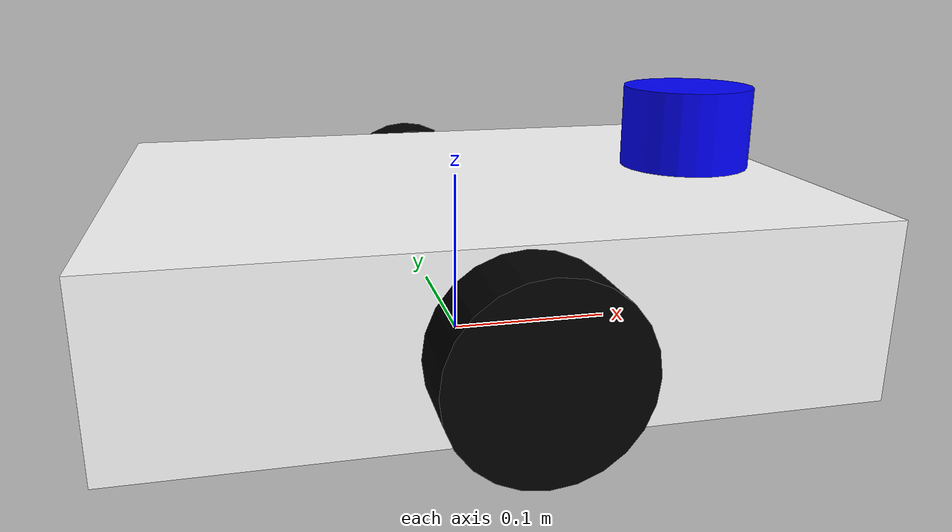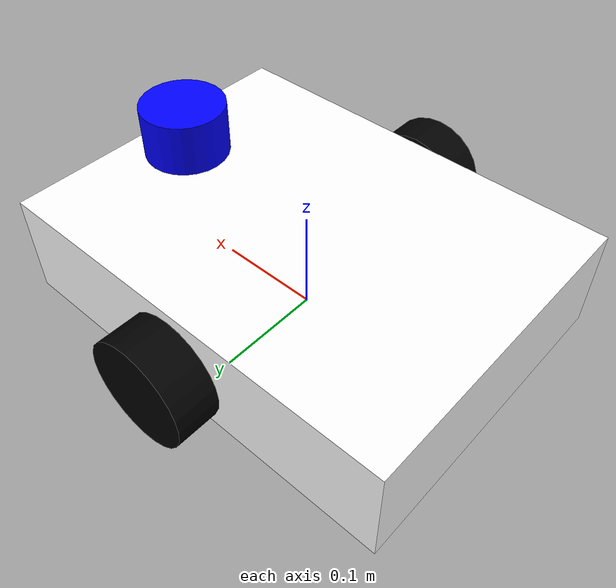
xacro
<?xml version="1.0"?>
<robot xmlns:xacro="http://www.ros.org/wiki/xacro" name="my_custom_bot">

    <material name="white"><color rgba="1 1 1 1"/></material>
    <material name="black"><color rgba="0 0 0 1"/></material>
    <material name="blue"><color rgba="0 0 1 1"/></material>
    <material name="red"><color rgba="1 0 0 1"/></material>

    <xacro:property name="wheel_radius" value="0.05"/>
    <xacro:property name="wheel_len" value="0.04"/>
    <xacro:property name="wheel_mass" value="0.5"/>
    <xacro:property name="chassis_mass" value="5.0"/>

    <link name="base_footprint"/>

    <joint name="base_joint" type="fixed">
        <parent link="base_footprint"/>
        <child link="base_link"/>
        <origin xyz="0 0 0.05"/>
    </joint>

    <link name="base_link">
        <visual>
            <origin xyz="0 0 0" rpy="0 0 0"/>
            <geometry><box size="0.4 0.3 0.1"/></geometry>
            <material name="white"/>
        </visual>
        <collision>
            <geometry><box size="0.4 0.3 0.1"/></geometry>
        </collision>
        <inertial>
            <mass value="${chassis_mass}"/>
            <inertia ixx="0.04" ixy="0" ixz="0" iyy="0.07" iyz="0" izz="0.1"/>
        </inertial>
    </link>

    <xacro:macro name="wheel" params="prefix y_offset rpy_roll axis_z">
        <joint name="${prefix}_wheel_joint" type="continuous">
            <parent link="base_link"/>
            <child link="${prefix}_wheel"/>
            <origin xyz="0 ${y_offset} 0" rpy="${rpy_roll} 0 0"/>
            <axis xyz="0 0 ${axis_z}"/>
        </joint>

        <link name="${prefix}_wheel">
            <visual>
                <geometry><cylinder radius="${wheel_radius}" length="${wheel_len}"/></geometry>
                <material name="black"/>
            </visual>
            <collision>
                <geometry><cylinder radius="${wheel_radius}" length="${wheel_len}"/></geometry>
            </collision>
            <inertial>
                <mass value="${wheel_mass}"/>
                <inertia ixx="0.0004" ixy="0" ixz="0" iyy="0.0004" iyz="0" izz="0.0006"/>
            </inertial>
        </link>
    </xacro:macro>

    <xacro:wheel prefix="left" y_offset="0.175" rpy_roll="-1.5707" axis_z="1"/>
    <xacro:wheel prefix="right" y_offset="-0.175" rpy_roll="1.5707" axis_z="-1"/>

    <joint name="caster_joint" type="fixed">
        <parent link="base_link"/>
        <child link="caster_wheel"/>
        <origin xyz="-0.15 0 -0.025" rpy="0 0 0"/>
    </joint>

    <link name="caster_wheel">
        <visual>
            <geometry><sphere radius="0.025"/></geometry>
            <material name="black"/>
        </visual>
        <collision>
            <geometry><sphere radius="0.025"/></geometry>
        </collision>
        <inertial>
            <mass value="0.2"/>
            <inertia ixx="0.0001" ixy="0" ixz="0" iyy="0.0001" iyz="0" izz="0.0001"/>
        </inertial>
    </link>

    <joint name="lidar_joint" type="fixed">
        <parent link="base_link"/>
        <child link="lidar_link"/>
        <origin xyz="0.15 0 0.075" rpy="0 0 0"/>
    </joint>

    <link name="lidar_link">
        <visual>
            <geometry><cylinder radius="0.04" length="0.05"/></geometry>
            <material name="blue"/>
        </visual>
        <collision>
            <geometry><cylinder radius="0.04" length="0.05"/></geometry>
        </collision>
        <inertial>
            <mass value="0.1"/>
            <inertia ixx="0.0001" ixy="0" ixz="0" iyy="0.0001" iyz="0" izz="0.0001"/>
        </inertial>
    </link>

    <gazebo reference="caster_wheel">
        <mu1>0.0</mu1>
        <mu2>0.0</mu2>
    </gazebo>

    <gazebo>
        <plugin filename="gz-sim-diff-drive-system" name="gz::sim::systems::DiffDrive">
            <left_joint>left_wheel_joint</left_joint>
            <right_joint>right_wheel_joint</right_joint>
            <wheel_separation>0.35</wheel_separation>
            <wheel_radius>0.05</wheel_radius>
            <odom_publish_frequency>50</odom_publish_frequency>
            <topic>cmd_vel</topic>
            <odom_topic>odom</odom_topic>
            <frame_id>odom</frame_id>
            <child_frame_id>base_footprint</child_frame_id>
        </plugin>

        <plugin filename="gz-sim-sensors-system" name="gz::sim::systems::Sensors">
            <render_engine>ogre2</render_engine>
        </plugin>
    </gazebo>

    <gazebo reference="lidar_link">
        <sensor name="lidar" type="gpu_lidar">
            <pose>0 0 0 0 0 0</pose>
            <topic>scan</topic>
            <update_rate>10</update_rate>
            <ray>
                <scan>
                    <horizontal>
                        <samples>180</samples>
                        <resolution>1</resolution>
                        <min_angle>-1.57079</min_angle>
                        <max_angle>1.57079</max_angle>
                    </horizontal>
                </scan>
                <range>
                    <min>0.08</min> <max>12.0</max>
                    <resolution>0.01</resolution>
                </range>
            </ray>
            <always_on>1</always_on>
            <visualize>true</visualize>
        </sensor>
    </gazebo>

</robot>
